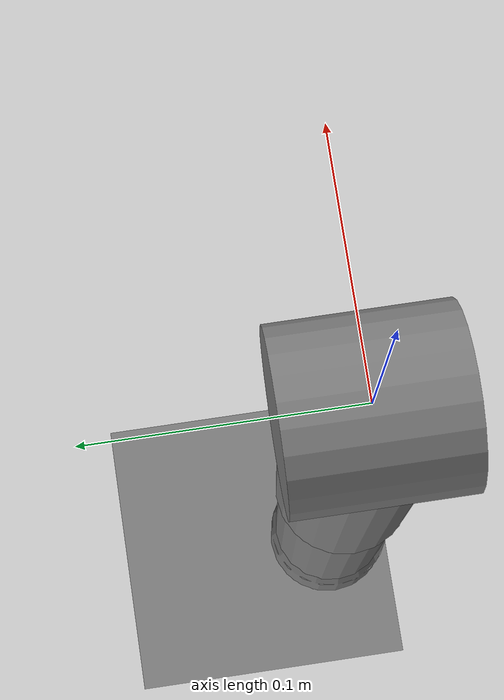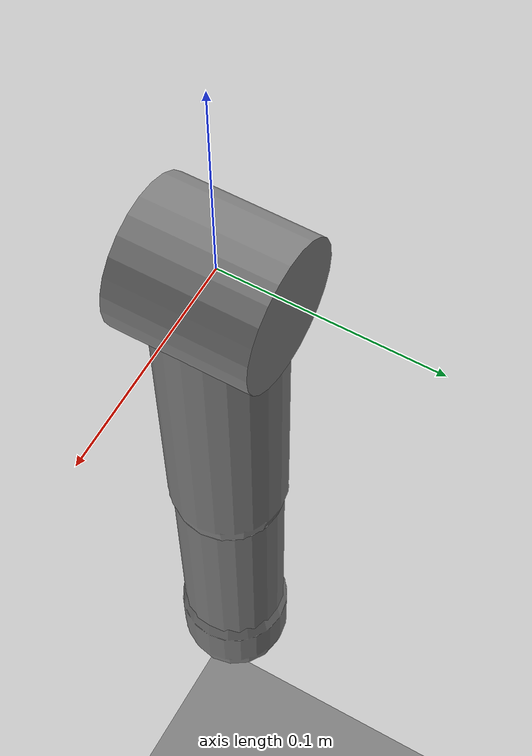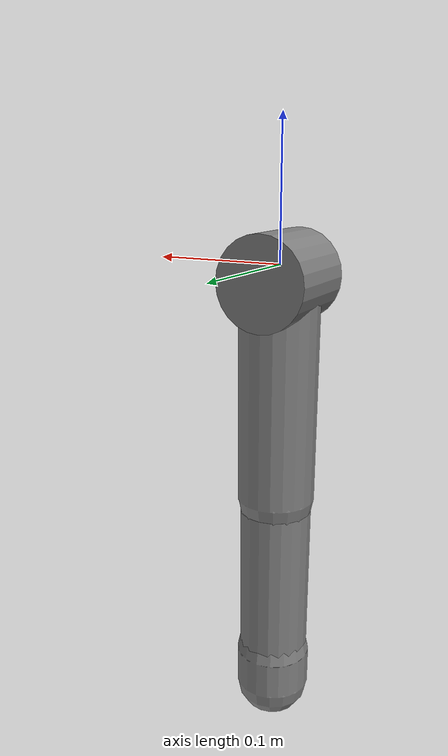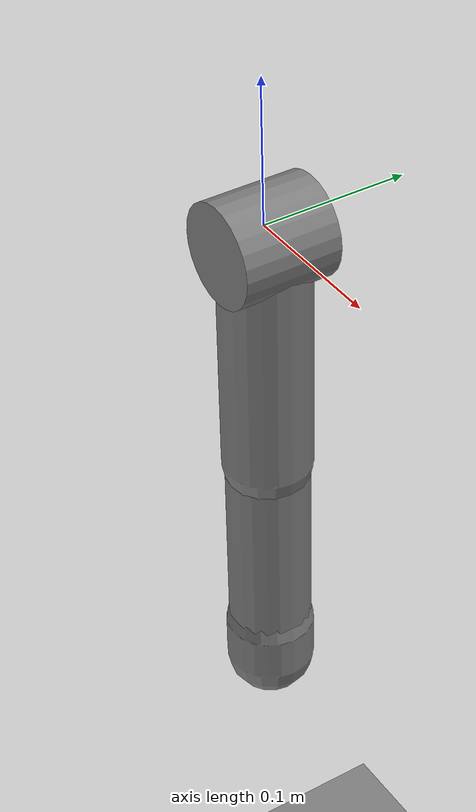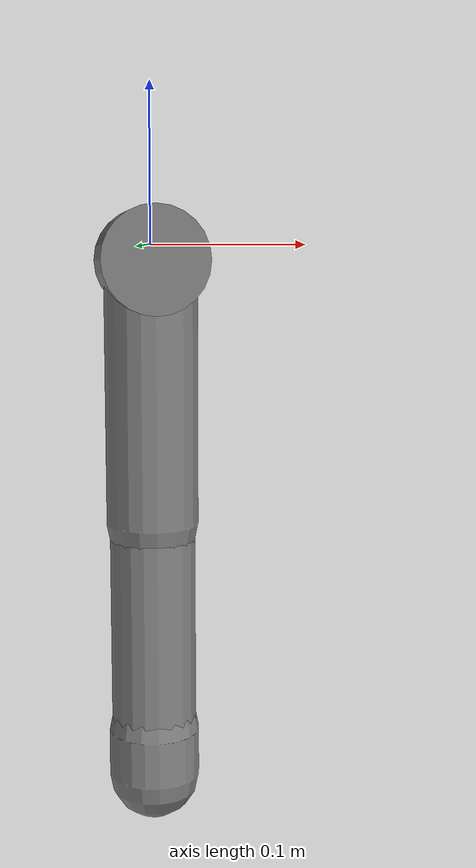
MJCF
<mujoco model="finger">
  <custom>
    <numeric data="90.0 90.0" name="init_qpos"/>
  </custom>

  <compiler inertiafromgeom="true"/>

  <option timestep="0.01" collision="all"/>

    <worldbody>
        <light name="light" directional="true" diffuse=".6 .6 .6" pos="0 0 2" specular=".3 .3 .3"/>
        <geom name="ground" type="plane" pos="0 0 -0.6" size=".6 .2 10"  solimp="0 0.9 0.01" solref=".02 1"/>
        <camera name="cam0" pos="0 -1 .8" xyaxes="1 0 0 0 1 2"/>
        <camera name="cam1" pos="0 -1 .4" xyaxes="1 0 0 0 0 1" />

        <body name="finger">
            <body name="proximal" pos="0 0 -0.01">
                <geom name="proximal_decoration" type="cylinder" fromto="0 -.033 0 0 .033 0" size=".034" solimp="0 0.9 0.01" solref=".02 1" condim="1"/>
                <joint name="proximal" type="hinge" axis="0 -1 0" range="-150 -80" ref="-90" damping="0.05" limited="false" />
                <geom name="proximal" type="capsule" size=".03" fromto="0 0 0 0 0 -.17" solimp="0 0.9 0.01" solref=".02 1" condim="1"/>
                <body name="distal" pos="0 0 -.18">
                    <joint name="distal" type="hinge" axis="0 -1 0" range="-50 50" damping="0.05" limited="false"/>
                    <geom name="distal" type="capsule" size=".028" fromto="0 0 0 0 0 -.16" solimp="0 0.9 0.01" solref=".02 1" condim="1"/>
                    <geom name="fingertip" type="capsule" size=".03" fromto="0 0 -.13 0 0 -.161" solimp="0 0.9 0.01" solref=".02 1" condim="1"/>
                </body>
            </body>
        </body>
    </worldbody>

    <actuator>
        <motor name="proximal" joint="proximal" gear="3" ctrllimited="true" ctrlrange="-1 1"/>
        <motor name="distal" joint="distal" gear="1.5" ctrllimited="true" ctrlrange="-1 1"/>
    </actuator>
</mujoco>
